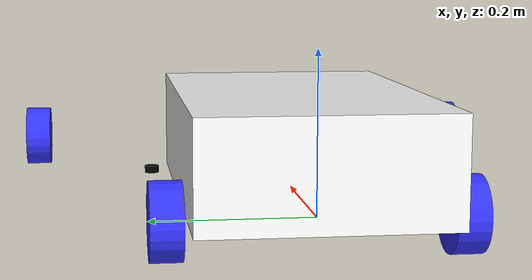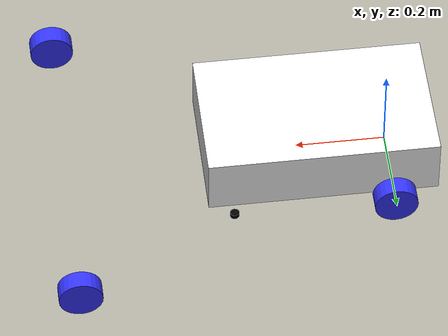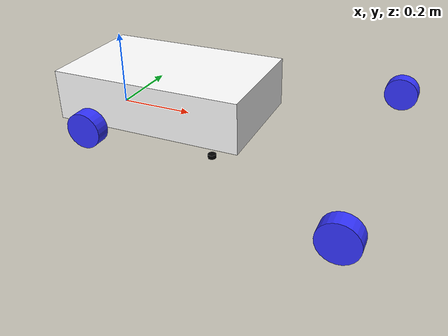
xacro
<?xml version="1.0"?>
<robot xmlns:xacro="http://www.ros.org/wiki/xacro" >

    <material name="white">
        <color rgba="1 1 1 1" />
    </material>

    <material name="orange">
        <color rgba="1 0.3 0.1 1"/>
    </material>

    <material name="blue">
        <color rgba="0.2 0.2 1 1"/>
    </material>

    <material name="black">
        <color rgba="0 0 0 1"/>
    </material>

     <material name="red">
        <color rgba="1 0 0 1"/>
    </material>

    <!-- REAR BASE LINK -->

    <link name="base_link">

    </link>

    <!-- CHASSIS LINK -->

    <joint name="chassis_joint" type="fixed">
        <parent link="base_link"/>
        <child link="chassis"/>
        <origin xyz="-0.1 0 0"/>
    </joint>

    <link name="chassis">
        <visual>
            <origin xyz="0.2575 0 0.0675"/>
            <geometry>
                <box size="0.515 0.31 0.135"/>
            </geometry>
            <material name="white"/>
        </visual>
    </link>

  <!-- Rear LEFT WHEEL -->

<joint name="rear_left_wheel_joint" type="continuous">
    <parent link="base_link"/>
    <child link="rear_left_wheel"/>
    <origin xyz="0 0.18 0" rpy="-${pi/2} 0 0"/>
    <!-- y = b + thickness of wheel/2 + 0.5(mm) -->
    <!-- connected with base link -->
    <axis xyz="0 0 1"/>
</joint>

<link name="rear_left_wheel">
    <visual>
        <geometry>
            <cylinder length="0.04" radius="0.0485" />
        </geometry>
        <material name="blue"/>
    </visual>
</link>

  <!-- Rear RIGHT WHEEL -->

<joint name="rear_right_wheel_joint" type="continuous">
    <parent link="base_link"/>
    <child link="rear_right_wheel"/>
    <origin xyz="0 -0.18 0" rpy="-${pi/2} 0 0"/>
    <!-- y = b + thickness of wheel/2 + 0.5(mm) -->
    <!-- connected with base link -->
    <axis xyz="0 0 -1"/>
</joint>

<link name="rear_right_wheel">
    <visual>
        <geometry>
            <cylinder length="0.04" radius="0.0485" />
        </geometry>
        <material name="blue"/>
    </visual>
</link>

<!-- FRONT -->

  <!-- FRONT LEFT WHEEL -->

<joint name="front_left_wheel_joint" type="continuous">
    <parent link="front_left_wheel_steer"/>
    <child link="front_left_wheel"/>
    <origin xyz="0.360 0.18 0" rpy="-${pi/2} 0 0"/>
    <!-- y = b + thickness of wheel/2 + 0.5(mm) -->
    <!-- connected with base link -->
    <axis xyz="0 0 1"/>
</joint>

<link name="front_left_wheel">
    <visual>
        <geometry>
            <cylinder length="0.04" radius="0.0485" />
        </geometry>
        <material name="blue"/>
    </visual>
</link>

<joint name="front_left_wheel_steer_joint" type="revolute">
    <limit lower="-1" upper="1" effort="1" velocity="5"/>
    <axis xyz="0 0 1"/>
    <parent link="base_link"/>
    <child link="front_left_wheel_steer"/>
    <origin rpy="0 0 0" xyz="0.360 0.18 0"/>
  </joint>

<link name="front_left_wheel_steer">
    <visual>
      <geometry>
        <cylinder length="0.01" radius="0.01"/>
      </geometry>
      <material name="black"/>
    </visual>
  </link>

  <!-- FRONT RIGHT WHEEL -->

<joint name="front_right_wheel_joint" type="continuous">
    <parent link="front_right_wheel_steer"/>
    <child link="front_right_wheel"/>
    <origin xyz="0.360 -0.18 0" rpy="-${pi/2} 0 0"/>
    <!-- y = b + thickness of wheel/2 + 0.5(mm) -->
    <!-- connected with base link -->
    <axis xyz="0 0 -1"/>
</joint>

<link name="front_right_wheel">
    <visual>
        <geometry>
            <cylinder length="0.04" radius="0.0485" />
        </geometry>
        <material name="blue"/>
    </visual>
</link>

<joint name="front_right_wheel_steer_joint" type="revolute">
    <limit lower="-1" upper="1" effort="1" velocity="5"/>
    <axis xyz="0 0 1"/>
    <parent link="base_link"/>
    <child link="front_right_wheel_steer"/>
    <origin rpy="0 0 0" xyz="0.360 -0.18 0"/>
  </joint>

<link name="front_right_wheel_steer">
    <visual>
      <geometry>
        <cylinder length="0.01" radius="0.01"/>
      </geometry>
      <material name="black"/>
    </visual>
  </link>

    </robot>
